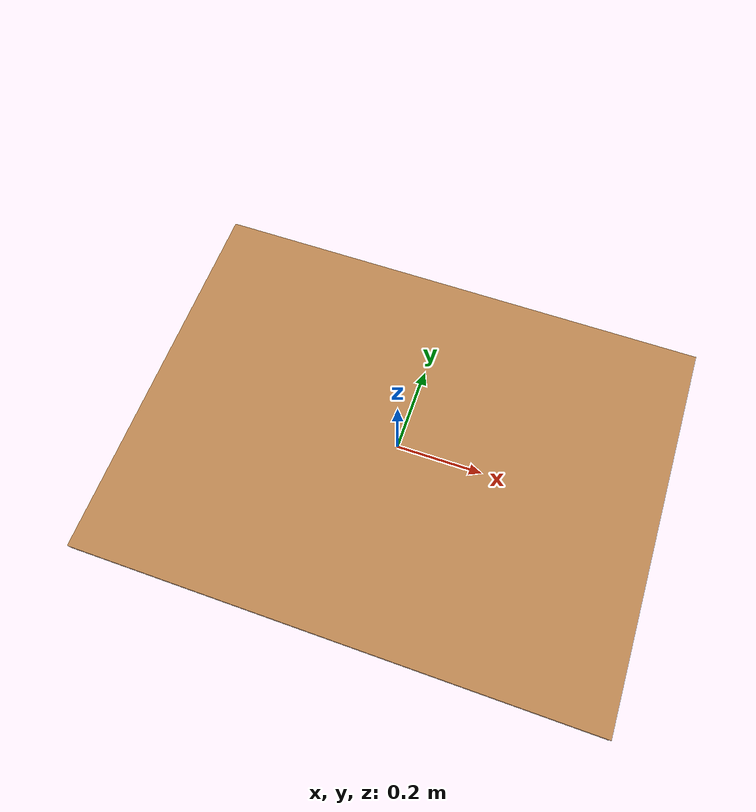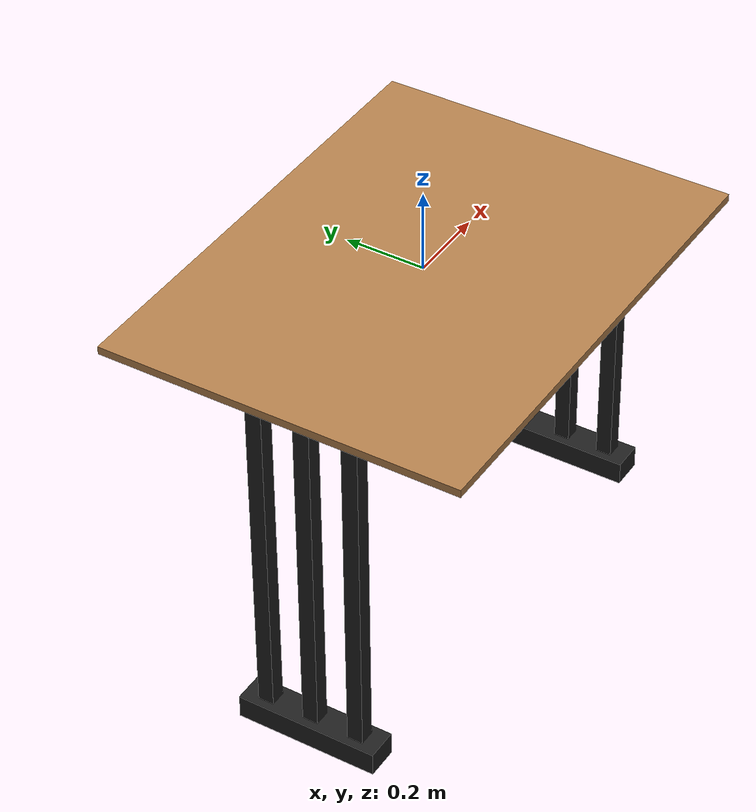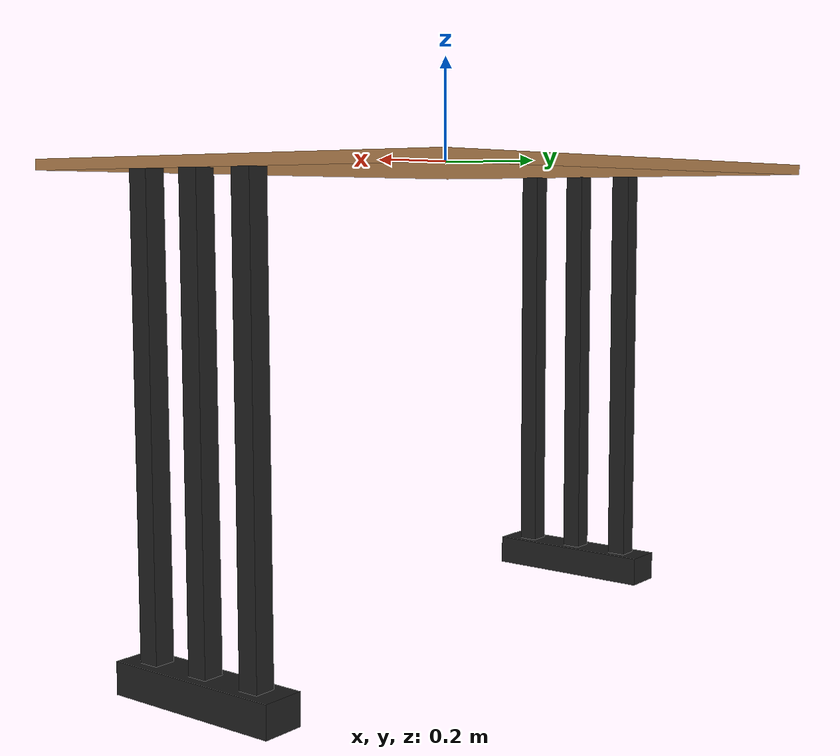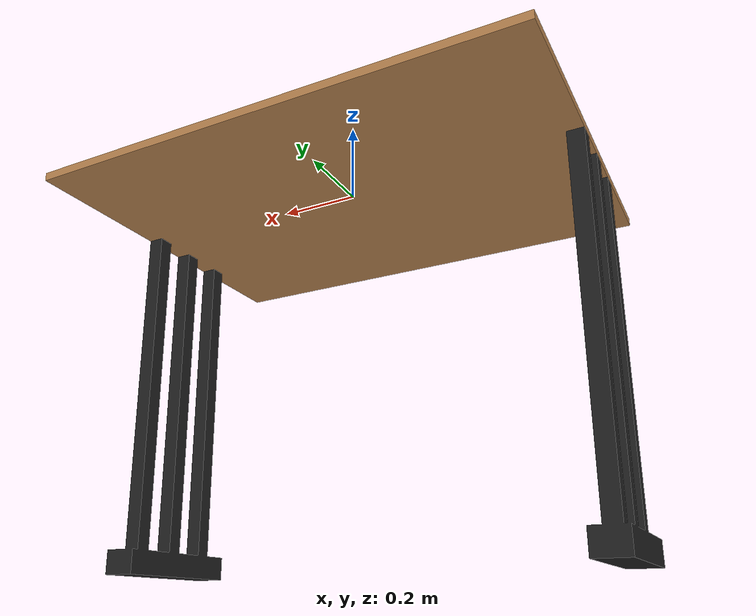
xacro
<?xml version="1.0" encoding="utf-8"?>
<robot name="table" xmlns:xacro="http://www.ros.org/wiki/xacro">

  <link name="world"/>
  <joint name="fixed" type="fixed">
    <parent
      link="world" />
    <child
      link="base_link" />
  </joint>

  <link
    name="base_link">
    <inertial>
      <origin
        xyz="-2.2753E-16 -0.01 -8.0718E-17"
        rpy="0 0 0" />
      <mass
        value="12.332" />
      <inertia
        ixx="0.85144"
        ixy="0"
        ixz="1.9233E-16"
        iyy="2.3557"
        iyz="0"
        izz="1.5051" />
    </inertial>
    <visual>
      <origin
        xyz="0 0 0"
        rpy="0 0 0" />
      <geometry>
        <mesh
          filename="package://cobot-env/meshes/table_base_link.STL" />
      </geometry>
    </visual>
    <collision>
      <origin
        xyz="0 0 0"
        rpy="0 0 0" />
      <geometry>
        <mesh
          filename="package://cobot-env/meshes/table_base_link.STL" />
      </geometry>
    </collision>
  </link>
  <link
    name="left_leg">
    <inertial>
      <origin
        xyz="1.1102E-16 0.28963 -2.7756E-17"
        rpy="0 0 0" />
      <mass
        value="45.883" />
      <inertia
        ixx="4.3912"
        ixy="1.1798E-17"
        ixz="3.7459E-17"
        iyy="0.47274"
        iyz="-3.4868E-17"
        izz="3.9416" />
    </inertial>
    <visual>
      <origin
        xyz="0 0 0"
        rpy="0 0 0" />
      <geometry>
        <mesh
          filename="package://cobot-env/meshes/table_left_leg.STL" />
      </geometry>
    </visual>
    <collision>
      <origin
        xyz="0 0 0"
        rpy="0 0 0" />
      <geometry>
        <mesh
          filename="package://cobot-env/meshes/table_left_leg.STL" />
      </geometry>
    </collision>
  </link>
  <joint
    name="left_leg_jnt"
    type="fixed">
    <origin
      xyz="0.585 -0.065 -0.87"
      rpy="1.5708 0 0" />
    <parent
      link="base_link" />
    <child
      link="left_leg" />
    <axis
      xyz="0 0 0" />
  </joint>
  <link
    name="right_leg">
    <inertial>
      <origin
        xyz="1.1102E-16 0.28963 0"
        rpy="0 0 0" />
      <mass
        value="45.883" />
      <inertia
        ixx="4.3912"
        ixy="6.9249E-18"
        ixz="7.5698E-17"
        iyy="0.47274"
        iyz="-7.4658E-17"
        izz="3.9416" />
    </inertial>
    <visual>
      <origin
        xyz="0 0 0"
        rpy="0 0 0" />
      <geometry>
        <mesh
          filename="package://cobot-env/meshes/table_right_leg.STL" />
      </geometry>
    </visual>
    <collision>
      <origin
        xyz="0 0 0"
        rpy="0 0 0" />
      <geometry>
        <mesh
          filename="package://cobot-env/meshes/table_right_leg.STL" />
      </geometry>
    </collision>
  </link>
  <joint
    name="right_leg_jnt"
    type="fixed">
    <origin
      xyz="-0.585 -0.065 -0.87"
      rpy="1.5708 0 3.1416" />
    <parent
      link="base_link" />
    <child
      link="right_leg" />
    <axis
      xyz="0 0 0" />
  </joint>

  <gazebo reference="base_link">
    <material> Gazebo/WoodPallet </material>
  </gazebo>

  <gazebo reference="left_leg">
    <material> Gazebo/Black </material>
  </gazebo>

  <gazebo reference="right_leg">
    <material> Gazebo/Black </material>
  </gazebo>

  <gazebo>
    <static> 1 </static>
  </gazebo>

</robot>
